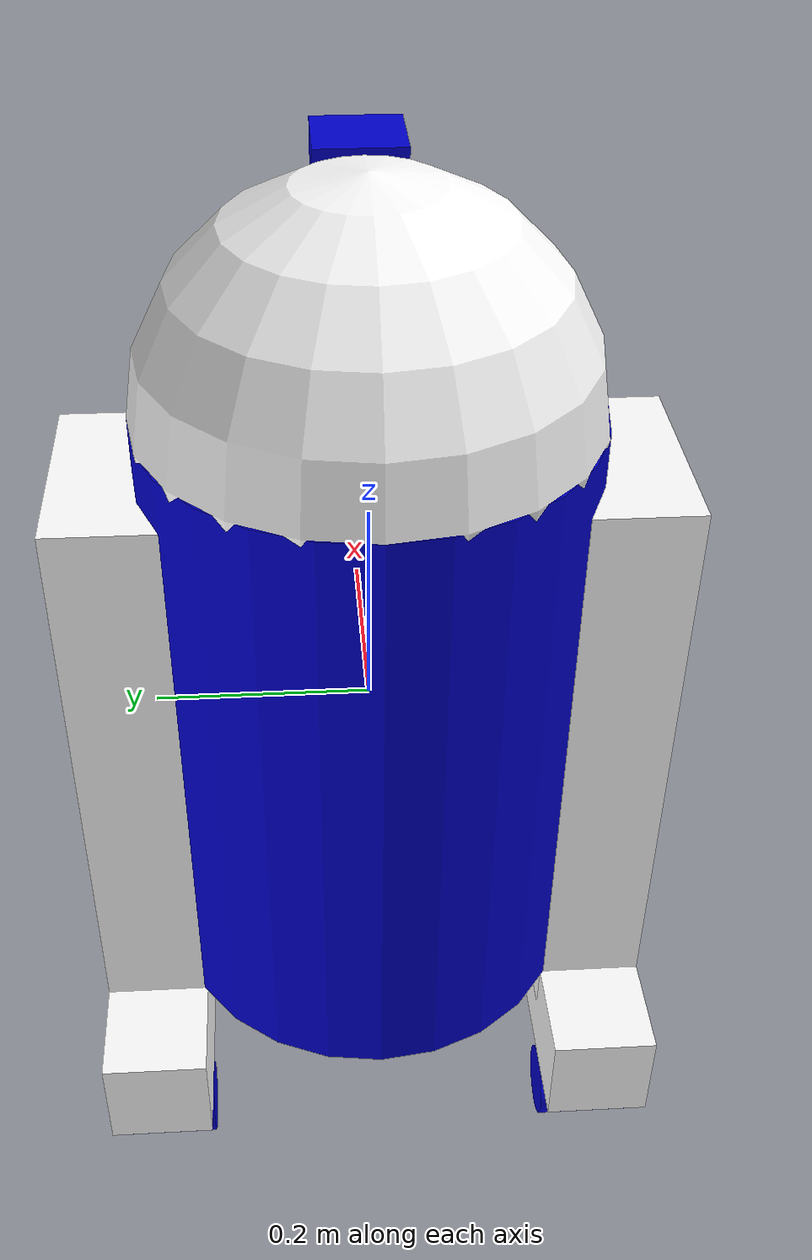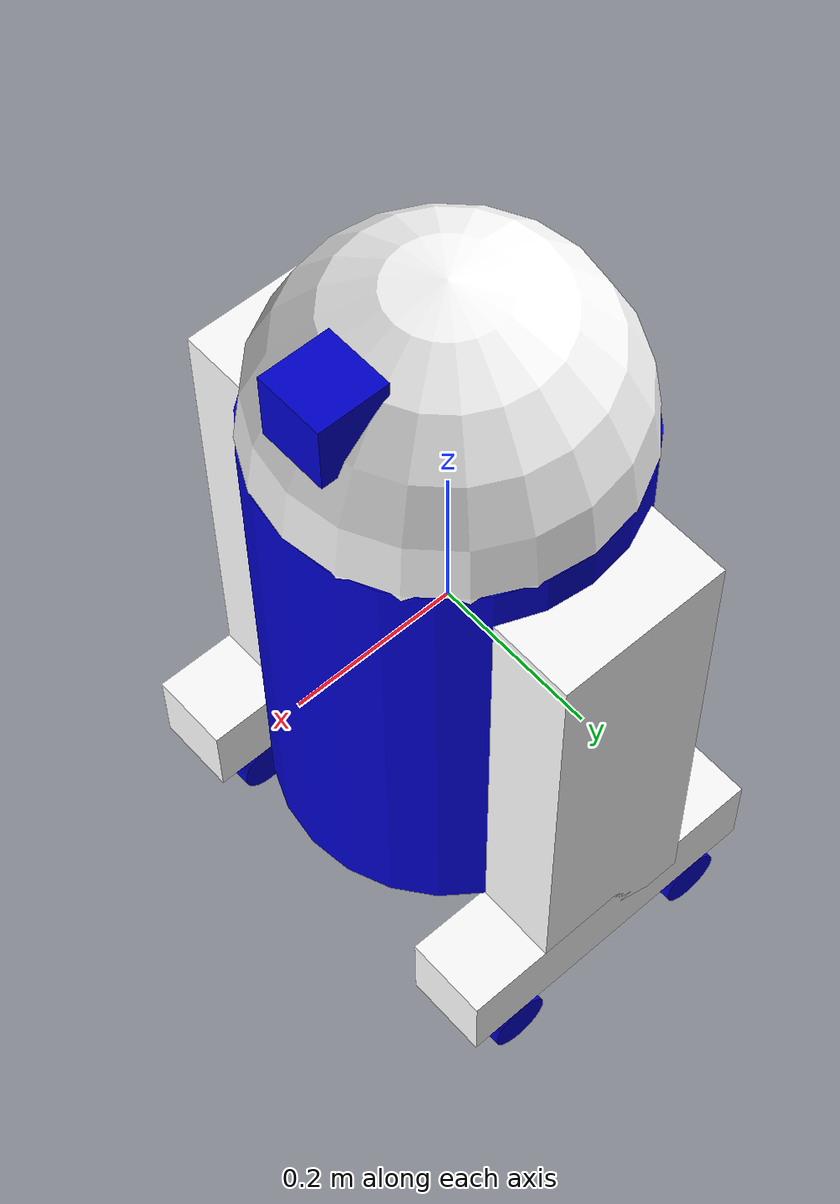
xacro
<?xml version="1.0"?>
<robot name="generic_robot" xmlns:xacro="http://ros.org/wiki/xacro">

  <xacro:property name="width" value="0.2" />
  <xacro:property name="leglen" value="0.6" />
  <xacro:property name="bodylen" value="0.6" />
  <xacro:property name="baselen" value="0.4" />
  <xacro:property name="wheeldiam" value="0.07" />
  <xacro:property name="pi" value="3.1415" />

  <material name="blue">
    <color rgba="0 0 0.8 1"/>
  </material>

  <material name="white">
    <color rgba="1 1 1 1"/>
  </material>

  <xacro:macro name="default_inertial" params="mass">
    <inertial>
      <mass value="${mass}" />
      <inertia ixx="1.0" ixy="0.0" ixz="0.0" iyy="1.0" iyz="0.0" izz="1.0" />
    </inertial>
  </xacro:macro>

  <link name="base_link">
    <visual>
      <geometry>
        <cylinder radius="${width}" length="${bodylen}"/>
      </geometry>
      <material name="blue"/>
    </visual>
    <collision>
      <geometry>
        <cylinder radius="${width}" length="${bodylen}"/>
      </geometry>
    </collision>
    <xacro:default_inertial mass="10"/>
  </link>

  <xacro:macro name="wheel" params="prefix suffix reflect">

    <link name="${prefix}_${suffix}_wheel">
      <visual>
        <origin xyz="0 0 0" rpy="${pi/2} 0 0" />
        <geometry>
          <cylinder radius="${wheeldiam/2}" length="0.1"/>
        </geometry>
        <material name="blue"/>
      </visual>
      <collision>
        <origin xyz="0 0 0" rpy="${pi/2} 0 0" />
        <geometry>
          <cylinder radius="${wheeldiam/2}" length="0.1"/>
        </geometry>
      </collision>
      <xacro:default_inertial mass="1"/>
    </link>
    <joint name="${prefix}_${suffix}_wheel_joint" type="continuous">
      <axis xyz="0 1 0" rpy="0 0 0" />
      <parent link="${prefix}_base"/>
      <child link="${prefix}_${suffix}_wheel"/>
      <origin xyz="${baselen*reflect/3} 0 -${wheeldiam/2+.05}" rpy="0 0 0"/>
    </joint>

  </xacro:macro>

  <xacro:macro name="leg" params="prefix reflect">
    <link name="${prefix}_leg">
      <visual>
        <geometry>
          <box size="${leglen} 0.1 0.2"/>
        </geometry>
        <origin xyz="0 0 -${leglen/2}" rpy="0 ${pi/2} 0"/>
        <material name="white"/>
      </visual>
      <collision>
        <geometry>
          <box size="${leglen} 0.1 0.2"/>
        </geometry>
        <origin xyz="0 0 -${leglen/2}" rpy="0 ${pi/2} 0"/>
      </collision>
      <xacro:default_inertial mass="10"/>
    </link>

    <joint name="base_to_${prefix}_leg" type="fixed">
      <parent link="base_link"/>
      <child link="${prefix}_leg"/>
      <origin xyz="0 ${reflect*(width+.02)} 0.25" />
    </joint>

    <link name="${prefix}_base">
      <visual>
        <geometry>
          <box size="${baselen} 0.1 0.1"/>
        </geometry>
        <material name="white"/>
      </visual>
      <collision>
        <geometry>
          <box size="${baselen} 0.1 0.1"/>
        </geometry>
      </collision>
      <xacro:default_inertial mass="10"/>
    </link>

    <joint name="${prefix}_base_joint" type="fixed">
      <parent link="${prefix}_leg"/>
      <child link="${prefix}_base"/>
      <origin xyz="0 0 ${-leglen}" />
    </joint>
    <xacro:wheel prefix="${prefix}" suffix="front" reflect="1"/>
    <xacro:wheel prefix="${prefix}" suffix="back" reflect="-1"/>
  </xacro:macro>
  <xacro:leg prefix="right" reflect="-1" />
  <xacro:leg prefix="left" reflect="1" />

  <link name="head">
    <visual>
      <geometry>
        <sphere radius="${width}"/>
      </geometry>
      <material name="white"/>
    </visual>
    <collision>
      <geometry>
        <sphere radius="${width}"/>
      </geometry>
    </collision>
    <xacro:default_inertial mass="2"/>
  </link>

  <joint name="head_swivel" type="fixed">
    <parent link="base_link"/>
    <child link="head"/>
    <axis xyz="0 0 1"/>
    <origin xyz="0 0 ${bodylen/2}"/>
  </joint>

  <link name="box">
    <visual>
      <geometry>
        <box size="0.08 0.08 0.08"/>
      </geometry>
      <material name="blue"/>
      <origin xyz="-0.04 0 0"/>
    </visual>
    <collision>
      <geometry>
        <box size="0.08 0.08 0.08"/>
      </geometry>
    </collision>
    <xacro:default_inertial mass="1"/>
  </link>

  <joint name="tobox" type="fixed">
    <parent link="head"/>
    <child link="box"/>
    <origin xyz="${.707*width+0.04} 0 ${.707*width}"/>
  </joint>

  <!-- Gazebo plugin for ROS Control -->
  <gazebo>
    <plugin name="gazebo_ros_control" filename="libgazebo_ros_control.so">
      <robotNamespace>/</robotNamespace>
    </plugin>
  </gazebo>

  <!-- Add this line to include sensor URDFs -->
  <xacro:include filename="$(find cpr_robot_customizer)/urdf/accessories.urdf.xacro" />

</robot>

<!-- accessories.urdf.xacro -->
<robot xmlns:xacro="http://www.ros.org/wiki/xacro">

  <material name="dark_grey"><color rgba="0.2 0.2 0.2 1.0" /></material>
  <material name="black"><color rgba="0.15 0.15 0.15 1.0" /></material>

  <xacro:if value="$(optenv CPR_LASER 0)">
    <xacro:property name="lidar_model" value="$(optenv CPR_LASER_MODEL lms1xx)" />

    <xacro:if value="${lidar_model == 'lms1xx'}">
      <xacro:include filename="$(find sick_scan)/urdf/sick_lms1xx.urdf.xacro" />

      <xacro:sick_lms_1xx name="sick_lms1xx" ros_topic="$(optenv CPR_LASER_TOPIC scan)" />

      <joint name="$(optenv CPR_LASER_PARENT base_link)_sick_lms1xx_laser_joint" type="fixed">
        <origin xyz="$(optenv CPR_LASER_XYZ 0 0 0)" rpy="$(optenv CPR_LASER_RPY 0 0 0)" />
        <parent link="$(optenv CPR_LASER_PARENT base_link)" />
        <child link="sick_lms1xx_mount_link" />
      </joint>
    </xacro:if>

    <xacro:if value="${lidar_model == 'ust10'}">
      <xacro:include filename="$(find urg_node)/urdf/hokuyo_ust10.urdf.xacro" />

      <xacro:hokuyo_ust10_mount topic="$(optenv CPR_LASER_TOPIC scan)" prefix="hokuyo" parent_link="$(optenv CPR_LASER_PARENT base_link)">
        <origin xyz="$(optenv CPR_LASER_XYZ 0 0 0)" rpy="$(optenv CPR_LASER_RPY 0 0 0)" />
      </xacro:hokuyo_ust10_mount>
    </xacro:if>
  </xacro:if>

  <xacro:if value="$(optenv CPR_LASER_3D 0)">
    <xacro:property name="lidar_3d_model" value="$(optenv CPR_LASER_3D_MODEL vlp16)" />

    <xacro:if value="${lidar_3d_model == 'vlp16'}">
      <xacro:include filename="$(find velodyne_description)/urdf/VLP-16.urdf.xacro" />

      <xacro:VLP-16 parent="$(optenv CPR_LASER_3D_PARENT base_link)" topic="$(optenv CPR_LASER_3D_TOPIC points)">
        <origin xyz="$(optenv CPR_LASER_3D_XYZ 0 0 0)" rpy="$(optenv CPR_LASER_3D_RPY 0 0 0)" />
      </xacro:VLP-16>
    </xacro:if>

    <xacro:if value="${lidar_3d_model == 'hdl32e'}">
      <xacro:include filename="$(find velodyne_description)/urdf/HDL-32E.urdf.xacro" />

      <xacro:HDL-32E parent="$(optenv CPR_LASER_3D_PARENT base_link)" topic="$(optenv CPR_LASER_3D_TOPIC points)">
        <origin xyz="$(optenv CPR_LASER_3D_XYZ 0 0 0)" rpy="$(optenv CPR_LASER_3D_RPY 0 0 0)" />
      </xacro:HDL-32E>
    </xacro:if>
  </xacro:if>

  <xacro:if value="$(optenv CPR_GPS 0)">
    <xacro:property name="gps_model" value="$(optenv CPR_GPS_MODEL smart7)" />

    <xacro:if value="${gps_model == 'smart7'}">
      <xacro:include filename="$(find cpr_robot_customizer)/urdf/accessories/gps/novatel_smart7.urdf.xacro" />

      <xacro:novatel_smart7 />
    </xacro:if>

    <xacro:if value="${gps_model == '18x'}">
      <xacro:include filename="$(find cpr_robot_customizer)/urdf/accessories/gps/garmin_18x.urdf.xacro" />

      <xacro:garmin_18x />
    </xacro:if>

    <joint name="$(optenv CPR_GPS_PARENT base_link)_gps_link_joint" type="fixed">
      <origin xyz="$(optenv CPR_GPS_XYZ 0 0 0)" rpy="$(optenv CPR_GPS_RPY 0 0 0)" />
      <parent link="$(optenv CPR_GPS_PARENT base_link)" />
      <child link="gps_link" />
    </joint>
  </xacro:if>

  <!--
    Add/remove an IMU sensor by changing the CPR_MICROSTRAIN environment variable. This supports the LORD MicroStrain GX3, GX4, GX5, CX5, RQ1 and GQ7 series IMU sensors.
  -->
  <xacro:if value="$(optenv CPR_MICROSTRAIN 0)">
    <xacro:include filename="$(find cpr_robot_customizer)/urdf/accessories/imu/microstrain.urdf.xacro" />

    <xacro:microstrain />

    <joint name="$(optenv CPR_MICROSTRAIN_PARENT base_link)_microstrain_link_joint" type="fixed">
      <origin xyz="$(optenv CPR_MICROSTRAIN_XYZ 0 0 0)" rpy="$(optenv CPR_MICROSTRAIN_RPY 0 0 0)" />
      <parent link="$(optenv CPR_MICROSTRAIN_PARENT base_link)" />
      <child link="microstrain_link" />
    </joint>
  </xacro:if>

  <xacro:if value="$(optenv CPR_REALSENSE 0)">
    <xacro:include filename="$(find cpr_robot_customizer)/urdf/accessories/camera/intel_realsense.urdf.xacro" />
    <xacro:realsense_sensor rs_model="$(optenv CPR_REALSENSE_MODEL d435)"
                            prefix="$(optenv CPR_REALSENSE_PARENT base_link)"
                            topic="$(optenv CPR_REALSENSE_TOPIC realsense)" />
  </xacro:if>

</robot>
